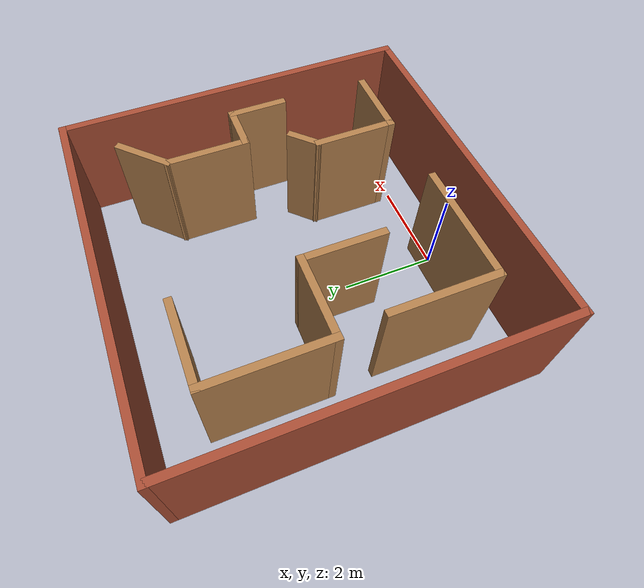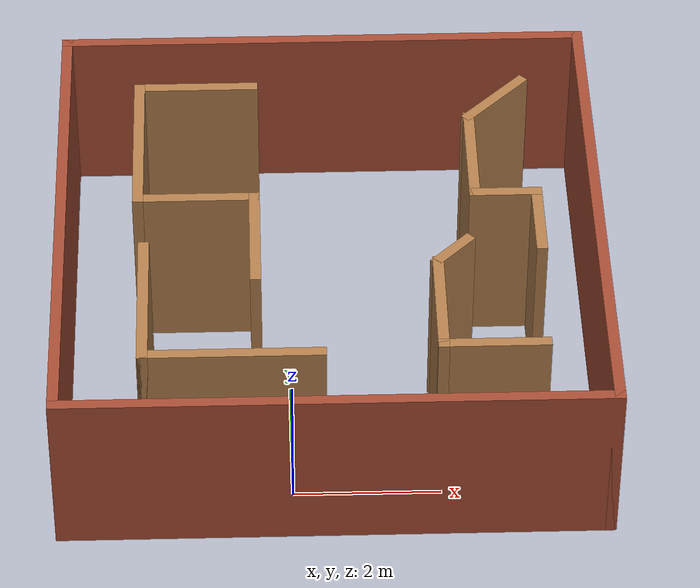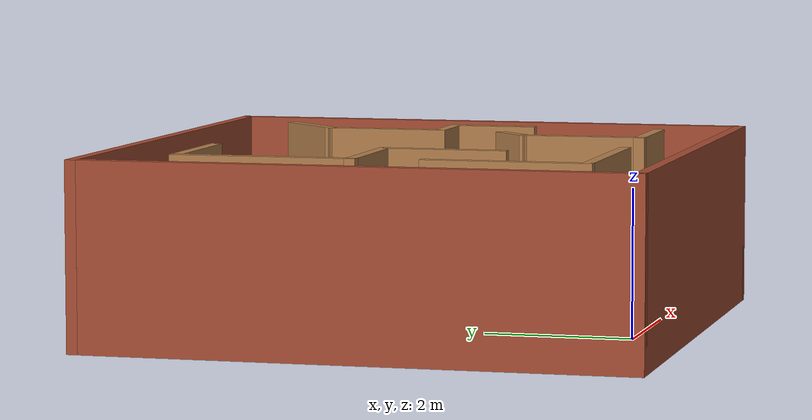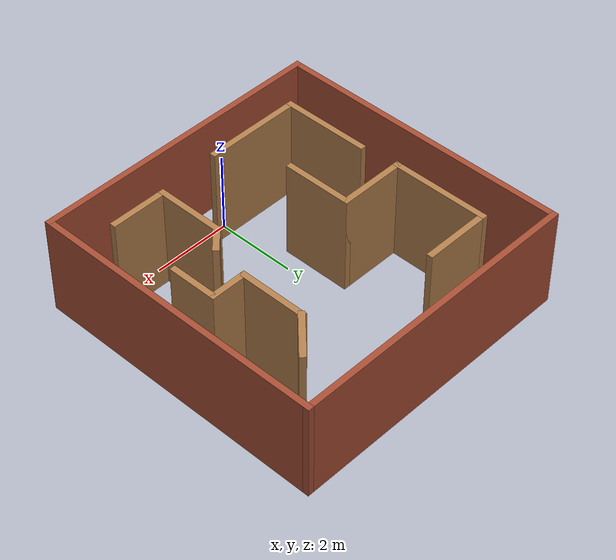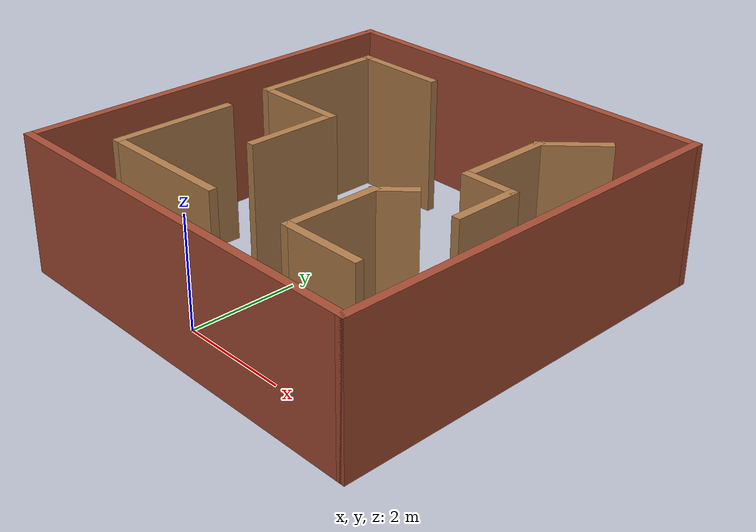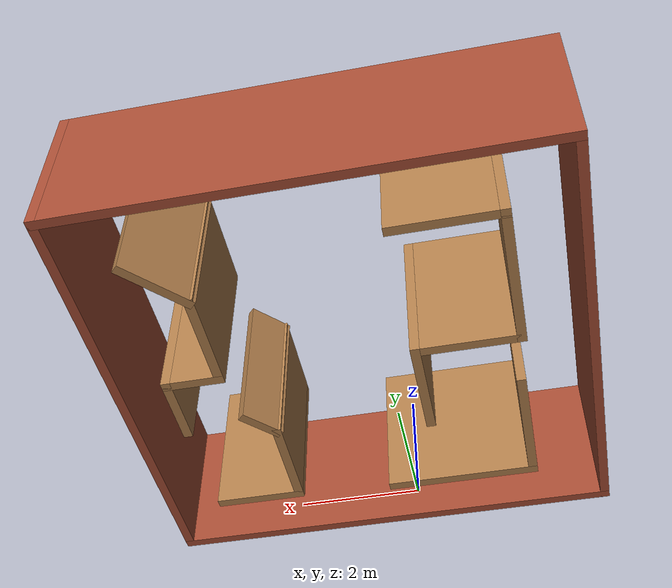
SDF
<?xml version='1.0'?>
<sdf version='1.7'>
  <model name='custom_world_2'>
    <pose>0.565 2.975 0 0 -0 0</pose>
    <link name='Wall_0'>
      <collision name='Wall_0_Collision'>
        <geometry>
          <box>
            <size>7.5 0.15 2.5</size>
          </box>
        </geometry>
        <pose>0 0 1.25 0 -0 0</pose>
      </collision>
      <visual name='Wall_0_Visual'>
        <pose>0 0 1.25 0 -0 0</pose>
        <geometry>
          <box>
            <size>7.5 0.15 2.5</size>
          </box>
        </geometry>
        <material>
          <script>
            <uri>file://media/materials/scripts/gazebo.material</uri>
            <name>Gazebo/Bricks</name>
          </script>
          <ambient>1 1 1 1</ambient>
        </material>
        <meta>
          <layer>0</layer>
        </meta>
      </visual>
      <pose>0 -3.675 0 0 -0 0</pose>
    </link>
    <link name='Wall_1'>
      <collision name='Wall_1_Collision'>
        <geometry>
          <box>
            <size>7.5 0.15 2.5</size>
          </box>
        </geometry>
        <pose>0 0 1.25 0 -0 0</pose>
      </collision>
      <visual name='Wall_1_Visual'>
        <pose>0 0 1.25 0 -0 0</pose>
        <geometry>
          <box>
            <size>7.5 0.15 2.5</size>
          </box>
        </geometry>
        <material>
          <script>
            <uri>file://media/materials/scripts/gazebo.material</uri>
            <name>Gazebo/Bricks</name>
          </script>
          <ambient>1 1 1 1</ambient>
        </material>
        <meta>
          <layer>0</layer>
        </meta>
      </visual>
      <pose>3.675 0 0 0 -0 1.5708</pose>
    </link>
    <link name='Wall_14'>
      <collision name='Wall_14_Collision'>
        <geometry>
          <box>
            <size>2.5 0.15 2.5</size>
          </box>
        </geometry>
        <pose>0 0 1.25 0 -0 0</pose>
      </collision>
      <visual name='Wall_14_Visual'>
        <pose>0 0 1.25 0 -0 0</pose>
        <geometry>
          <box>
            <size>2.5 0.15 2.5</size>
          </box>
        </geometry>
        <material>
          <script>
            <uri>file://media/materials/scripts/gazebo.material</uri>
            <name>Gazebo/Wood</name>
          </script>
          <ambient>1 1 1 1</ambient>
        </material>
        <meta>
          <layer>0</layer>
        </meta>
      </visual>
      <pose>-2.62302 1.46619 0 0 -0 1.5708</pose>
    </link>
    <link name='Wall_15'>
      <collision name='Wall_15_Collision'>
        <geometry>
          <box>
            <size>1.75 0.15 2.5</size>
          </box>
        </geometry>
        <pose>0 0 1.25 0 -0 0</pose>
      </collision>
      <visual name='Wall_15_Visual'>
        <pose>0 0 1.25 0 -0 0</pose>
        <geometry>
          <box>
            <size>1.75 0.15 2.5</size>
          </box>
        </geometry>
        <material>
          <script>
            <uri>file://media/materials/scripts/gazebo.material</uri>
            <name>Gazebo/Wood</name>
          </script>
          <ambient>1 1 1 1</ambient>
        </material>
        <meta>
          <layer>0</layer>
        </meta>
      </visual>
      <pose>-1.82302 2.64119 0 0 -0 0</pose>
    </link>
    <link name='Wall_17'>
      <collision name='Wall_17_Collision'>
        <geometry>
          <box>
            <size>2.25 0.15 2.5</size>
          </box>
        </geometry>
        <pose>0 0 1.25 0 -0 0</pose>
      </collision>
      <visual name='Wall_17_Visual'>
        <pose>0 0 1.25 0 -0 0</pose>
        <geometry>
          <box>
            <size>2.25 0.15 2.5</size>
          </box>
        </geometry>
        <material>
          <script>
            <uri>file://media/materials/scripts/gazebo.material</uri>
            <name>Gazebo/Wood</name>
          </script>
          <ambient>1 1 1 1</ambient>
        </material>
        <meta>
          <layer>0</layer>
        </meta>
      </visual>
      <pose>-2.53125 -1.72343 0 0 -0 -1.5708</pose>
    </link>
    <link name='Wall_18'>
      <collision name='Wall_18_Collision'>
        <geometry>
          <box>
            <size>2.5 0.15 2.5</size>
          </box>
        </geometry>
        <pose>0 0 1.25 0 -0 0</pose>
      </collision>
      <visual name='Wall_18_Visual'>
        <pose>0 0 1.25 0 -0 0</pose>
        <geometry>
          <box>
            <size>2.5 0.15 2.5</size>
          </box>
        </geometry>
        <material>
          <script>
            <uri>file://media/materials/scripts/gazebo.material</uri>
            <name>Gazebo/Wood</name>
          </script>
          <ambient>1 1 1 1</ambient>
        </material>
        <meta>
          <layer>0</layer>
        </meta>
      </visual>
      <pose>-1.35625 -2.77343 0 0 -0 0</pose>
    </link>
    <link name='Wall_2'>
      <collision name='Wall_2_Collision'>
        <geometry>
          <box>
            <size>7.5 0.15 2.5</size>
          </box>
        </geometry>
        <pose>0 0 1.25 0 -0 0</pose>
      </collision>
      <visual name='Wall_2_Visual'>
        <pose>0 0 1.25 0 -0 0</pose>
        <geometry>
          <box>
            <size>7.5 0.15 2.5</size>
          </box>
        </geometry>
        <material>
          <script>
            <uri>file://media/materials/scripts/gazebo.material</uri>
            <name>Gazebo/Bricks</name>
          </script>
          <ambient>1 1 1 1</ambient>
        </material>
        <meta>
          <layer>0</layer>
        </meta>
      </visual>
      <pose>0 3.675 0 0 -0 3.14159</pose>
    </link>
    <link name='Wall_21'>
      <collision name='Wall_21_Collision'>
        <geometry>
          <box>
            <size>1.25 0.15 2.5</size>
          </box>
        </geometry>
        <pose>0 0 1.25 0 -0 0</pose>
      </collision>
      <visual name='Wall_21_Visual'>
        <pose>0 0 1.25 0 -0 0</pose>
        <geometry>
          <box>
            <size>1.25 0.15 2.5</size>
          </box>
        </geometry>
        <material>
          <script>
            <uri>file://media/materials/scripts/gazebo.material</uri>
            <name>Gazebo/Wood</name>
          </script>
          <ambient>1 1 1 1</ambient>
        </material>
        <meta>
          <layer>0</layer>
        </meta>
      </visual>
      <pose>2.39988 2.2916 0 0 -0 -2.35619</pose>
    </link>
    <link name='Wall_22'>
      <collision name='Wall_22_Collision'>
        <geometry>
          <box>
            <size>1.75 0.15 2.5</size>
          </box>
        </geometry>
        <pose>0 0 1.25 0 -0 0</pose>
      </collision>
      <visual name='Wall_22_Visual'>
        <pose>0 0 1.25 0 -0 0</pose>
        <geometry>
          <box>
            <size>1.75 0.15 2.5</size>
          </box>
        </geometry>
        <material>
          <script>
            <uri>file://media/materials/scripts/gazebo.material</uri>
            <name>Gazebo/Wood</name>
          </script>
          <ambient>1 1 1 1</ambient>
        </material>
        <meta>
          <layer>0</layer>
        </meta>
      </visual>
      <pose>2.01097 1.10269 0 0 -0 -1.5708</pose>
    </link>
    <link name='Wall_23'>
      <collision name='Wall_23_Collision'>
        <geometry>
          <box>
            <size>1 0.15 2.5</size>
          </box>
        </geometry>
        <pose>0 0 1.25 0 -0 0</pose>
      </collision>
      <visual name='Wall_23_Visual'>
        <pose>0 0 1.25 0 -0 0</pose>
        <geometry>
          <box>
            <size>1 0.15 2.5</size>
          </box>
        </geometry>
        <material>
          <script>
            <uri>file://media/materials/scripts/gazebo.material</uri>
            <name>Gazebo/Wood</name>
          </script>
          <ambient>1 1 1 1</ambient>
        </material>
        <meta>
          <layer>0</layer>
        </meta>
      </visual>
      <pose>2.43597 0.302688 0 0 -0 0</pose>
    </link>
    <link name='Wall_24'>
      <collision name='Wall_24_Collision'>
        <geometry>
          <box>
            <size>1.25 0.15 2.5</size>
          </box>
        </geometry>
        <pose>0 0 1.25 0 -0 0</pose>
      </collision>
      <visual name='Wall_24_Visual'>
        <pose>0 0 1.25 0 -0 0</pose>
        <geometry>
          <box>
            <size>1.25 0.15 2.5</size>
          </box>
        </geometry>
        <material>
          <script>
            <uri>file://media/materials/scripts/gazebo.material</uri>
            <name>Gazebo/Wood</name>
          </script>
          <ambient>1 1 1 1</ambient>
        </material>
        <meta>
          <layer>0</layer>
        </meta>
      </visual>
      <pose>2.86097 -0.247312 0 0 -0 -1.5708</pose>
    </link>
    <link name='Wall_26'>
      <collision name='Wall_26_Collision'>
        <geometry>
          <box>
            <size>1.5 0.15 2.5</size>
          </box>
        </geometry>
        <pose>0 0 1.25 0 -0 0</pose>
      </collision>
      <visual name='Wall_26_Visual'>
        <pose>0 0 1.25 0 -0 0</pose>
        <geometry>
          <box>
            <size>1.5 0.15 2.5</size>
          </box>
        </geometry>
        <material>
          <script>
            <uri>file://media/materials/scripts/gazebo.material</uri>
            <name>Gazebo/Wood</name>
          </script>
          <ambient>1 1 1 1</ambient>
        </material>
        <meta>
          <layer>0</layer>
        </meta>
      </visual>
      <pose>2.11379 -2.66267 0 0 -0 3.14159</pose>
    </link>
    <link name='Wall_27'>
      <collision name='Wall_27_Collision'>
        <geometry>
          <box>
            <size>1.75 0.15 2.5</size>
          </box>
        </geometry>
        <pose>0 0 1.25 0 -0 0</pose>
      </collision>
      <visual name='Wall_27_Visual'>
        <pose>0 0 1.25 0 -0 0</pose>
        <geometry>
          <box>
            <size>1.75 0.15 2.5</size>
          </box>
        </geometry>
        <material>
          <script>
            <uri>file://media/materials/scripts/gazebo.material</uri>
            <name>Gazebo/Wood</name>
          </script>
          <ambient>1 1 1 1</ambient>
        </material>
        <meta>
          <layer>0</layer>
        </meta>
      </visual>
      <pose>1.43879 -1.86267 0 0 -0 1.5708</pose>
    </link>
    <link name='Wall_28'>
      <collision name='Wall_28_Collision'>
        <geometry>
          <box>
            <size>0.75 0.15 2.5</size>
          </box>
        </geometry>
        <pose>0 0 1.25 0 -0 0</pose>
      </collision>
      <visual name='Wall_28_Visual'>
        <pose>0 0 1.25 0 -0 0</pose>
        <geometry>
          <box>
            <size>0.75 0.15 2.5</size>
          </box>
        </geometry>
        <material>
          <script>
            <uri>file://media/materials/scripts/gazebo.material</uri>
            <name>Gazebo/Wood</name>
          </script>
          <ambient>1 1 1 1</ambient>
        </material>
        <meta>
          <layer>0</layer>
        </meta>
      </visual>
      <pose>1.65092 -0.850533 0 0 -0 0.785398</pose>
    </link>
    <link name='Wall_3'>
      <collision name='Wall_3_Collision'>
        <geometry>
          <box>
            <size>7.5 0.15 2.5</size>
          </box>
        </geometry>
        <pose>0 0 1.25 0 -0 0</pose>
      </collision>
      <visual name='Wall_3_Visual'>
        <pose>0 0 1.25 0 -0 0</pose>
        <geometry>
          <box>
            <size>7.5 0.15 2.5</size>
          </box>
        </geometry>
        <material>
          <script>
            <uri>file://media/materials/scripts/gazebo.material</uri>
            <name>Gazebo/Bricks</name>
          </script>
          <ambient>1 1 1 1</ambient>
        </material>
        <meta>
          <layer>0</layer>
        </meta>
      </visual>
      <pose>-3.675 0 0 0 -0 -1.5708</pose>
    </link>
    <link name='Wall_8'>
      <collision name='Wall_8_Collision'>
        <geometry>
          <box>
            <size>1.75 0.15 2.5</size>
          </box>
        </geometry>
        <pose>0 0 1.25 0 -0 0</pose>
      </collision>
      <visual name='Wall_8_Visual'>
        <pose>0 0 1.25 0 -0 0</pose>
        <geometry>
          <box>
            <size>1.75 0.15 2.5</size>
          </box>
        </geometry>
        <material>
          <script>
            <uri>file://media/materials/scripts/gazebo.material</uri>
            <name>Gazebo/Wood</name>
          </script>
          <ambient>1 1 1 1</ambient>
        </material>
        <meta>
          <layer>0</layer>
        </meta>
      </visual>
      <pose>-1.82302 0.291193 0 0 -0 0</pose>
    </link>
    <link name='Wall_9'>
      <collision name='Wall_9_Collision'>
        <geometry>
          <box>
            <size>1.75 0.15 2.5</size>
          </box>
        </geometry>
        <pose>0 0 1.25 0 -0 0</pose>
      </collision>
      <visual name='Wall_9_Visual'>
        <pose>0 0 1.25 0 -0 0</pose>
        <geometry>
          <box>
            <size>1.75 0.15 2.5</size>
          </box>
        </geometry>
        <material>
          <script>
            <uri>file://media/materials/scripts/gazebo.material</uri>
            <name>Gazebo/Wood</name>
          </script>
          <ambient>1 1 1 1</ambient>
        </material>
        <meta>
          <layer>0</layer>
        </meta>
      </visual>
      <pose>-1.02302 -0.508807 0 0 -0 -1.5708</pose>
    </link>
    <static>1</static>
  </model>
</sdf>
